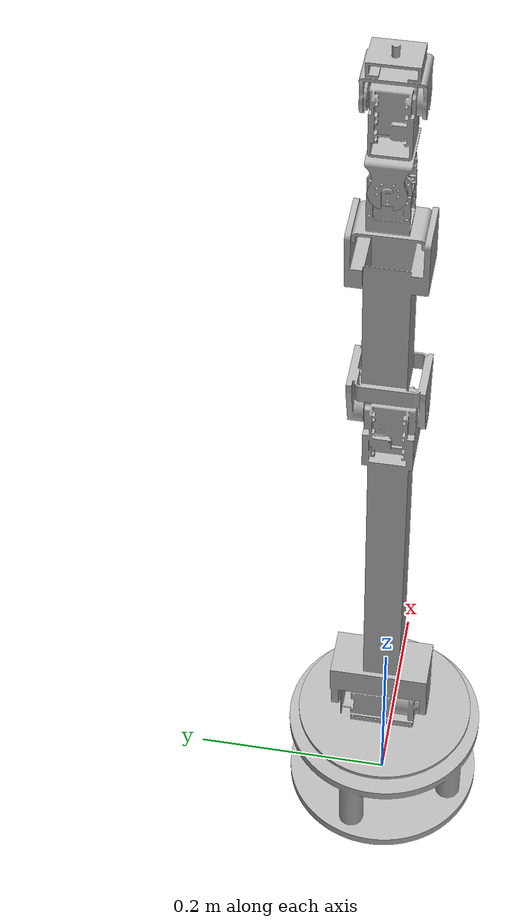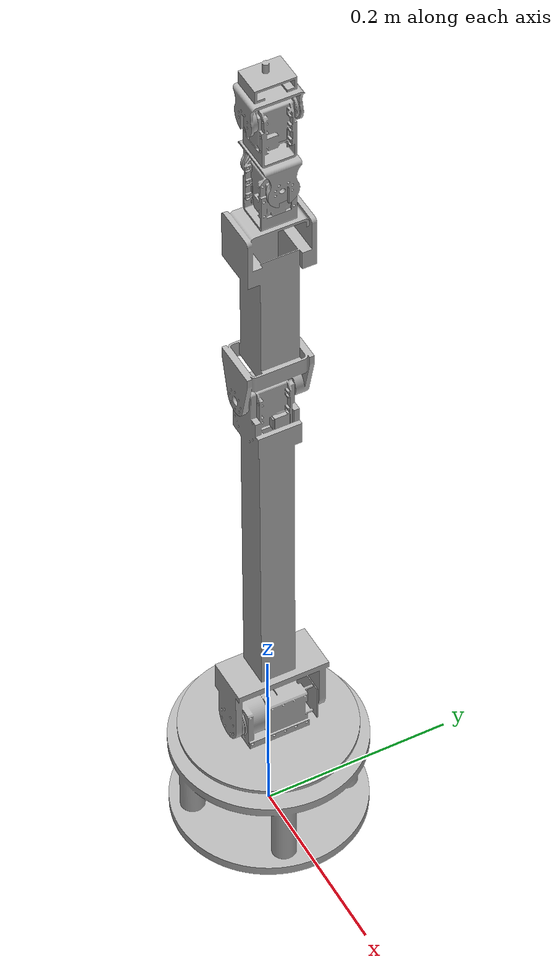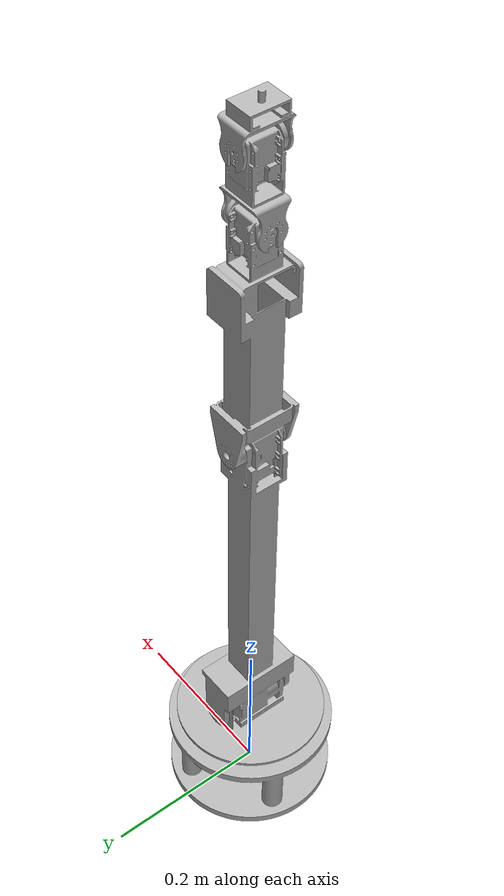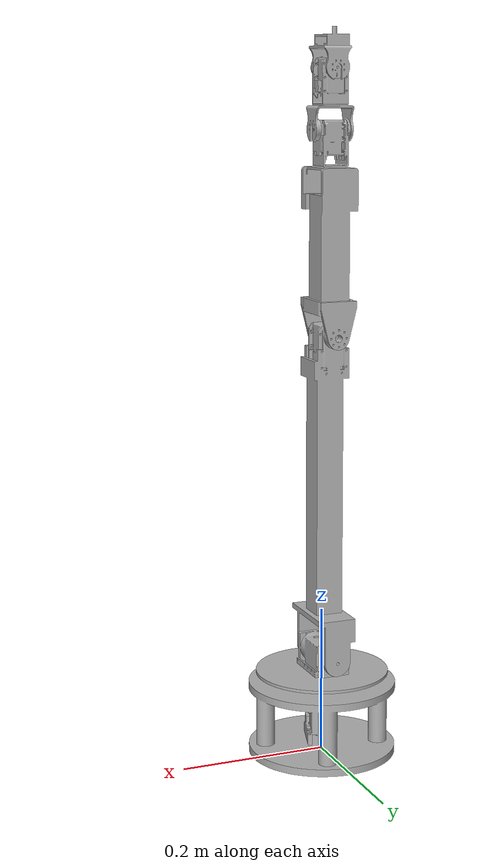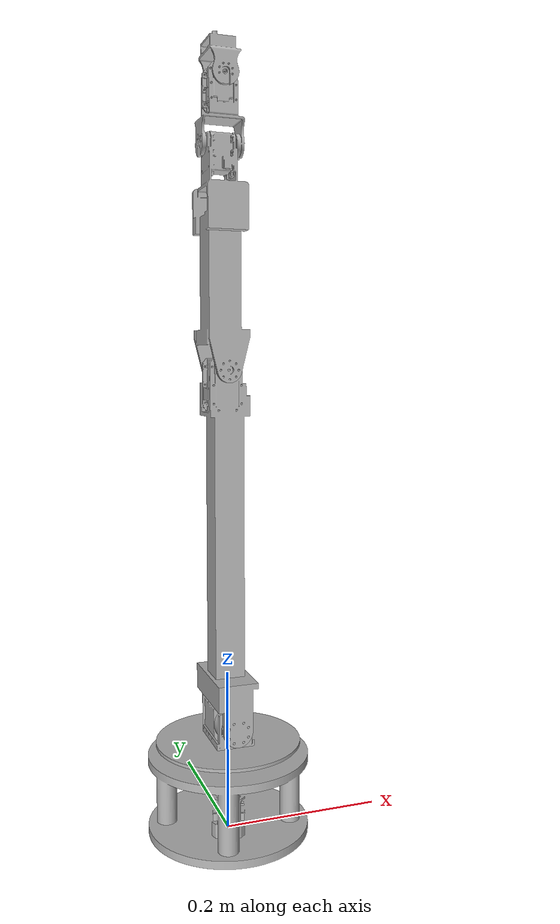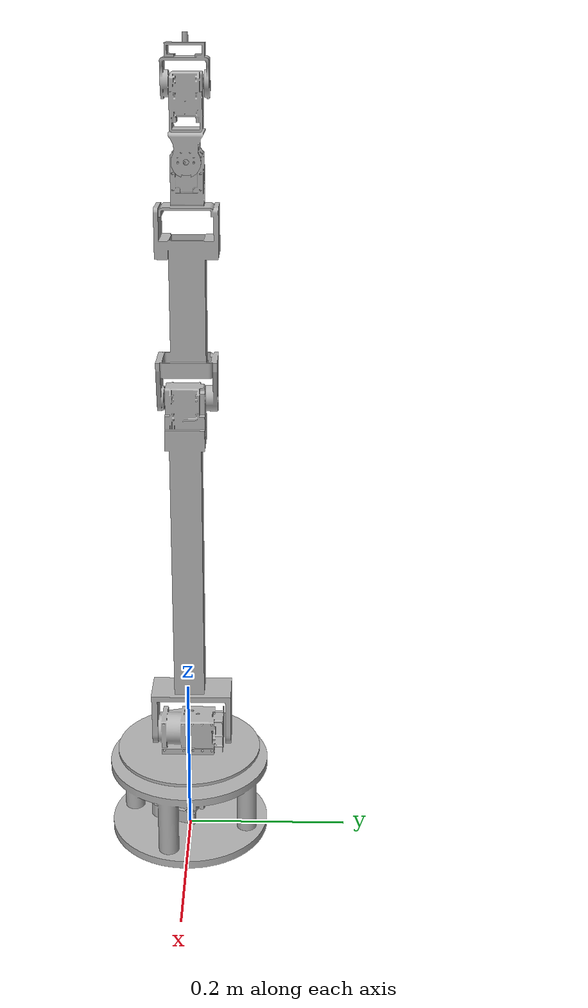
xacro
<robot xmlns:xacro="http://www.ros.org/wiki/xacro" name="manip2_urdf">

<xacro:arg name="mesh_ext" default="stl"/>  <!-- use 'stl' if you must -->

<xacro:include filename="$(find manip2_urdf_description)/urdf/materials.xacro" />
<xacro:include filename="$(find manip2_urdf_description)/urdf/manip2_urdf.trans" />
<xacro:include filename="$(find manip2_urdf_description)/urdf/manip2_urdf.gazebo" />
<link name="base_link">
  <inertial>
    <origin xyz="-0.0002267259162550396 -0.0007415870686383538 0.04921699271044659" rpy="0 0 0" />
    <mass value="2.2269004845153524" />
    <inertia ixx="0.009337" iyy="0.0093" izz="0.011197" ixy="-1.3e-05" iyz="-2.8e-05" ixz="-9e-06" />
  </inertial>
  <visual>
    <origin xyz="0 0 0" rpy="0 0 0" />
    <geometry>
      <mesh filename="package://manip2_urdf_description/meshes/base_link.$(arg mesh_ext)" scale="0.001 0.001 0.001" />
    </geometry>
    <material name="silver" />
  </visual>
  <collision>
    <origin xyz="0 0 0" rpy="0 0 0" />
    <geometry>
      <mesh filename="package://manip2_urdf_description/meshes/base_link.$(arg mesh_ext)" scale="0.001 0.001 0.001" />
    </geometry>
  </collision>
</link>

<link name="base_top_1">
  <inertial>
    <origin xyz="-4.18913771979311e-05 0.00011135365022418786 0.053133701737136815" rpy="0 0 0" />
    <mass value="0.42795130526479097" />
    <inertia ixx="0.000711" iyy="0.000674" izz="0.001192" ixy="-0.0" iyz="-1e-06" ixz="0.0" />
  </inertial>
  <visual>
    <origin xyz="-0.0 0.0 -0.0661" rpy="0 0 0" />
    <geometry>
      <mesh filename="package://manip2_urdf_description/meshes/base_top_1.$(arg mesh_ext)" scale="0.001 0.001 0.001" />
    </geometry>
    <material name="silver" />
  </visual>
  <collision>
    <origin xyz="-0.0 0.0 -0.0661" rpy="0 0 0" />
    <geometry>
      <mesh filename="package://manip2_urdf_description/meshes/base_top_1.$(arg mesh_ext)" scale="0.001 0.001 0.001" />
    </geometry>
  </collision>
</link>

<link name="link_1_1">
  <inertial>
    <origin xyz="-0.0028646640256025264 0.04149755519962038 0.19139082856038442" rpy="0 0 0" />
    <mass value="0.5054894832123901" />
    <inertia ixx="0.014043" iyy="0.013781" izz="0.000464" ixy="1e-06" iyz="7.8e-05" ixz="-8.7e-05" />
  </inertial>
  <visual>
    <origin xyz="0.000175 0.038075 -0.1395" rpy="0 0 0" />
    <geometry>
      <mesh filename="package://manip2_urdf_description/meshes/link_1_1.$(arg mesh_ext)" scale="0.001 0.001 0.001" />
    </geometry>
    <material name="silver" />
  </visual>
  <collision>
    <origin xyz="0.000175 0.038075 -0.1395" rpy="0 0 0" />
    <geometry>
      <mesh filename="package://manip2_urdf_description/meshes/link_1_1.$(arg mesh_ext)" scale="0.001 0.001 0.001" />
    </geometry>
  </collision>
</link>

<link name="link_2_1">
  <inertial>
    <origin xyz="-0.00010286043269834913 0.031841650045836646 0.13700387263872982" rpy="0 0 0" />
    <mass value="0.3838209136519176" />
    <inertia ixx="0.003056" iyy="0.002902" izz="0.000306" ixy="0.0" iyz="4e-06" ixz="2e-06" />
  </inertial>
  <visual>
    <origin xyz="0.00503 0.023975 -0.576599" rpy="0 0 0" />
    <geometry>
      <mesh filename="package://manip2_urdf_description/meshes/link_2_1.$(arg mesh_ext)" scale="0.001 0.001 0.001" />
    </geometry>
    <material name="silver" />
  </visual>
  <collision>
    <origin xyz="0.00503 0.023975 -0.576599" rpy="0 0 0" />
    <geometry>
      <mesh filename="package://manip2_urdf_description/meshes/link_2_1.$(arg mesh_ext)" scale="0.001 0.001 0.001" />
    </geometry>
  </collision>
</link>

<link name="link_3_1">
  <inertial>
    <origin xyz="0.024032892964014934 -1.3001362077914858e-05 0.03983307159940064" rpy="0 0 0" />
    <mass value="0.10053214650666124" />
    <inertia ixx="8.7e-05" iyy="9.7e-05" izz="3.3e-05" ixy="-0.0" iyz="-0.0" ixz="3e-06" />
  </inertial>
  <visual>
    <origin xyz="0.02813 -0.008725 -0.843599" rpy="0 0 0" />
    <geometry>
      <mesh filename="package://manip2_urdf_description/meshes/link_3_1.$(arg mesh_ext)" scale="0.001 0.001 0.001" />
    </geometry>
    <material name="silver" />
  </visual>
  <collision>
    <origin xyz="0.02813 -0.008725 -0.843599" rpy="0 0 0" />
    <geometry>
      <mesh filename="package://manip2_urdf_description/meshes/link_3_1.$(arg mesh_ext)" scale="0.001 0.001 0.001" />
    </geometry>
  </collision>
</link>

<link name="link_4_1">
  <inertial>
    <origin xyz="-0.0007275189719251531 -0.02444025508459377 0.01937989056226086" rpy="0 0 0" />
    <mass value="0.05844711080966675" />
    <inertia ixx="3.5e-05" iyy="1.9e-05" izz="2.5e-05" ixy="0.0" iyz="-1e-06" ixz="1e-06" />
  </inertial>
  <visual>
    <origin xyz="0.00478 -0.031325 -0.921599" rpy="0 0 0" />
    <geometry>
      <mesh filename="package://manip2_urdf_description/meshes/link_4_1.$(arg mesh_ext)" scale="0.001 0.001 0.001" />
    </geometry>
    <material name="silver" />
  </visual>
  <collision>
    <origin xyz="0.00478 -0.031325 -0.921599" rpy="0 0 0" />
    <geometry>
      <mesh filename="package://manip2_urdf_description/meshes/link_4_1.$(arg mesh_ext)" scale="0.001 0.001 0.001" />
    </geometry>
  </collision>
</link>

<link name="end_effector">

</link>

<joint name="joint1" type="revolute">
  <origin xyz="0.0 0.0 0.0661" rpy="0 0 0" />
  <parent link="base_link" />
  <child link="base_top_1" />
  <axis xyz="0.0 -0.0 1.0" />
<limit lower="-1.570796327" upper="1.570796327" effort="100.0" velocity="100.0" /></joint>

<joint name="joint2" type="revolute">
  <origin xyz="-0.000175 -0.038075 0.0734" rpy="0 0 0" />
  <parent link="base_top_1" />
  <child link="link_1_1" />
  <axis xyz="-0.0 -1.0 -0.0" />
<limit lower="-0.523598776" upper="0.959931089" effort="100.0" velocity="100.0" /></joint>

<joint name="joint3" type="revolute">
  <origin xyz="-0.004855 0.0141 0.437099" rpy="0 0 0" />
  <parent link="link_1_1" />
  <child link="link_2_1" />
  <axis xyz="0.0 -1.0 -0.0" />
<limit lower="-1.832595715" upper="0.000000000" effort="100.0" velocity="100.0" /></joint>

<joint name="joint4" type="revolute">
  <origin xyz="-0.0231 0.0327 0.267" rpy="0 0 0" />
  <parent link="link_2_1" />
  <child link="link_3_1" />
  <axis xyz="1.0 0.0 -0.0" />
<limit lower="-1.308996939" upper="1.308996939" effort="100.0" velocity="100.0" /></joint>

<joint name="joint5" type="revolute">
  <origin xyz="0.02335 0.0226 0.078" rpy="0 0 0" />
  <parent link="link_3_1" />
  <child link="link_4_1" />
  <axis xyz="-0.0 1.0 0.0" />
<limit lower="-1.570796327" upper="1.570796327" effort="100.0" velocity="100.0" /></joint>

<joint name="ee_fixed" type="fixed">
  <parent link="link_4_1" />
  <child link="end_effector" />

  <origin xyz="-0.006 -0.023 0.051" rpy="0 0 0" />
</joint>

</robot>

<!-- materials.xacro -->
<robot name="manip2_urdf" xmlns:xacro="http://www.ros.org/wiki/xacro" >

<material name="silver">
  <color rgba="0.700 0.700 0.700 1.000"/>
</material>

</robot>

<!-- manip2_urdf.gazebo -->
<robot name="manip2_urdf" xmlns:xacro="http://www.ros.org/wiki/xacro" >

<xacro:property name="body_color" value="Gazebo/Silver" />

<gazebo>
  <plugin name="control" filename="libgazebo_ros_control.so"/>
</gazebo>
<gazebo reference="base_link">
  <material>${body_color}</material>
  <mu1>0.2</mu1>
  <mu2>0.2</mu2>
  <selfCollide>true</selfCollide>
  <gravity>true</gravity>
</gazebo>

<gazebo reference="base_top_1">
  <material>${body_color}</material>
  <mu1>0.2</mu1>
  <mu2>0.2</mu2>
  <selfCollide>true</selfCollide>
</gazebo>

<gazebo reference="link_1_1">
  <material>${body_color}</material>
  <mu1>0.2</mu1>
  <mu2>0.2</mu2>
  <selfCollide>true</selfCollide>
</gazebo>

<gazebo reference="link_2_1">
  <material>${body_color}</material>
  <mu1>0.2</mu1>
  <mu2>0.2</mu2>
  <selfCollide>true</selfCollide>
</gazebo>

<gazebo reference="link_3_1">
  <material>${body_color}</material>
  <mu1>0.2</mu1>
  <mu2>0.2</mu2>
  <selfCollide>true</selfCollide>
</gazebo>

<gazebo reference="link_4_1">
  <material>${body_color}</material>
  <mu1>0.2</mu1>
  <mu2>0.2</mu2>
  <selfCollide>true</selfCollide>
</gazebo>

</robot>
